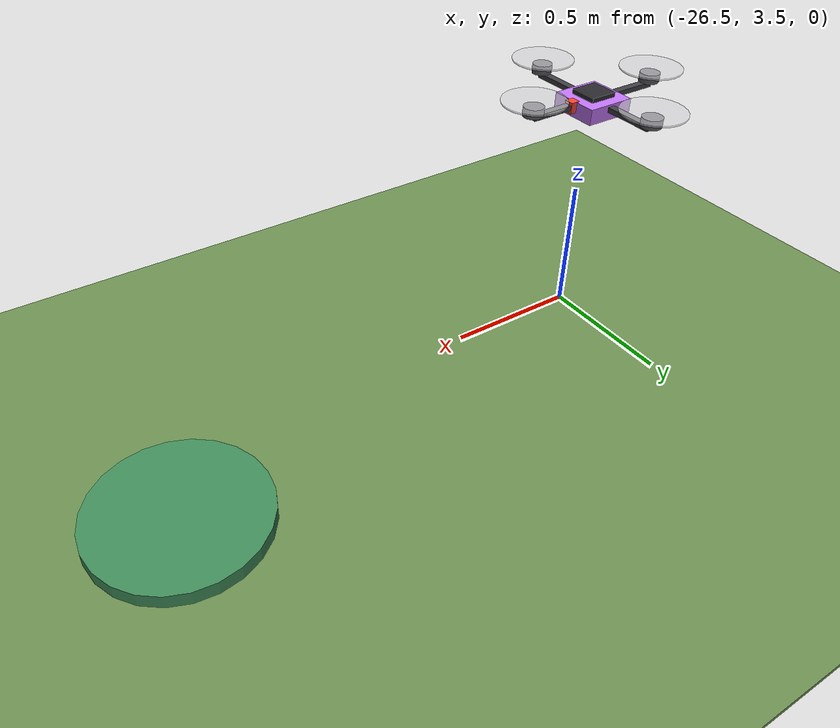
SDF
<sdf version="1.7">
 <world name="zx2026_forest">
  <include><uri>model://sun</uri></include>
  <model name="ground_plane">
   <static>true</static>
   <pose>0.00 0.00 -0.01 0 0 0</pose>
   <link name="link">
    <collision name="col"><geometry><box><size>70.00 70.00 0.02</size></box></geometry></collision>
    <visual name="vis">
     <geometry><box><size>70.00 70.00 0.02</size></box></geometry>
     <material>
      <ambient>0.42 0.56 0.32 1.00</ambient>
      <diffuse>0.42 0.56 0.32 1.00</diffuse>
      <specular>0.2 0.2 0.2 1</specular>
     </material>
    </visual>
   </link>
  </model>
  <model name="pad_5">
   <static>true</static>
   <pose>-24.75 3.75 0.025 0 0 0</pose>
   <link name="pad">
    <collision name="col">
     <geometry><cylinder><radius>0.3</radius><length>0.05</length></cylinder></geometry>
    </collision>
    <visual name="vis">
     <geometry><cylinder><radius>0.3</radius><length>0.05</length></cylinder></geometry>
     <material>
      <ambient>0.25 0.55 0.35 1.00</ambient>
      <diffuse>0.25 0.55 0.35 1.00</diffuse>
      <specular>0.2 0.2 0.2 1</specular>
     </material>
    </visual>
   </link>
  </model>
  <model name="drone_4">
   <pose>-26.25 3.75 1.0 0 0 0</pose>
   <link name="base_link">
    <inertial>
     <mass>2.0</mass>
     <inertia><ixx>0.04833</ixx><iyy>0.04833</iyy><izz>0.08333</izz><ixy>0</ixy><ixz>0</ixz><iyz>0</iyz></inertia>
    </inertial>
    <collision name="col"><geometry><box><size>0.5 0.5 0.2</size></box></geometry></collision>
    <visual name="chassis">
     <geometry><box><size>0.16 0.16 0.05</size></box></geometry>
     <material>
      <ambient>0.75 0.45 0.95 1.00</ambient>
      <diffuse>0.75 0.45 0.95 1.00</diffuse>
      <specular>0.2 0.2 0.2 1</specular>
     </material>
    </visual>
    <visual name="top">
     <pose>0.000 0.000 0.033 0 0 0.000</pose>
     <geometry><box><size>0.09 0.09 0.015</size></box></geometry>
     <material>
      <ambient>0.16 0.16 0.18 1.00</ambient>
      <diffuse>0.16 0.16 0.18 1.00</diffuse>
      <specular>0.2 0.2 0.2 1</specular>
     </material>
    </visual>
    <visual name="nose">
     <pose>0.085 0.000 0.010 0 0 0.000</pose>
     <geometry><box><size>0.03 0.03 0.035</size></box></geometry>
     <material>
      <ambient>0.95 0.25 0.20 1.00</ambient>
      <diffuse>0.95 0.25 0.20 1.00</diffuse>
      <specular>0.2 0.2 0.2 1</specular>
     </material>
    </visual>
    <visual name="arm0">
     <pose>0.120 0.000 0.010 0 0 0.000</pose>
     <geometry><box><size>0.24 0.024 0.016</size></box></geometry>
     <material>
      <ambient>0.24 0.24 0.26 1.00</ambient>
      <diffuse>0.24 0.24 0.26 1.00</diffuse>
      <specular>0.2 0.2 0.2 1</specular>
     </material>
    </visual>
    <visual name="motor0">
     <pose>0.240 0.000 0.032 0 0 0.000</pose>
     <geometry><cylinder><radius>0.032</radius><length>0.03</length></cylinder></geometry>
     <material>
      <ambient>0.33 0.33 0.35 1.00</ambient>
      <diffuse>0.33 0.33 0.35 1.00</diffuse>
      <specular>0.2 0.2 0.2 1</specular>
     </material>
    </visual>
    <visual name="prop0">
     <pose>0.240 0.000 0.062 0 0 0.000</pose>
     <geometry><cylinder><radius>0.10</radius><length>0.006</length></cylinder></geometry>
     <material>
      <ambient>0.82 0.82 0.84 0.55</ambient>
      <diffuse>0.82 0.82 0.84 0.55</diffuse>
      <specular>0.2 0.2 0.2 1</specular>
     </material>
    </visual>
    <visual name="arm1">
     <pose>-0.120 0.000 0.010 0 0 0.000</pose>
     <geometry><box><size>0.24 0.024 0.016</size></box></geometry>
     <material>
      <ambient>0.24 0.24 0.26 1.00</ambient>
      <diffuse>0.24 0.24 0.26 1.00</diffuse>
      <specular>0.2 0.2 0.2 1</specular>
     </material>
    </visual>
    <visual name="motor1">
     <pose>-0.240 0.000 0.032 0 0 0.000</pose>
     <geometry><cylinder><radius>0.032</radius><length>0.03</length></cylinder></geometry>
     <material>
      <ambient>0.33 0.33 0.35 1.00</ambient>
      <diffuse>0.33 0.33 0.35 1.00</diffuse>
      <specular>0.2 0.2 0.2 1</specular>
     </material>
    </visual>
    <visual name="prop1">
     <pose>-0.240 0.000 0.062 0 0 0.000</pose>
     <geometry><cylinder><radius>0.10</radius><length>0.006</length></cylinder></geometry>
     <material>
      <ambient>0.82 0.82 0.84 0.55</ambient>
      <diffuse>0.82 0.82 0.84 0.55</diffuse>
      <specular>0.2 0.2 0.2 1</specular>
     </material>
    </visual>
    <visual name="arm2">
     <pose>0.000 0.120 0.010 0 0 0.000</pose>
     <geometry><box><size>0.024 0.24 0.016</size></box></geometry>
     <material>
      <ambient>0.24 0.24 0.26 1.00</ambient>
      <diffuse>0.24 0.24 0.26 1.00</diffuse>
      <specular>0.2 0.2 0.2 1</specular>
     </material>
    </visual>
    <visual name="motor2">
     <pose>0.000 0.240 0.032 0 0 0.000</pose>
     <geometry><cylinder><radius>0.032</radius><length>0.03</length></cylinder></geometry>
     <material>
      <ambient>0.33 0.33 0.35 1.00</ambient>
      <diffuse>0.33 0.33 0.35 1.00</diffuse>
      <specular>0.2 0.2 0.2 1</specular>
     </material>
    </visual>
    <visual name="prop2">
     <pose>0.000 0.240 0.062 0 0 0.000</pose>
     <geometry><cylinder><radius>0.10</radius><length>0.006</length></cylinder></geometry>
     <material>
      <ambient>0.82 0.82 0.84 0.55</ambient>
      <diffuse>0.82 0.82 0.84 0.55</diffuse>
      <specular>0.2 0.2 0.2 1</specular>
     </material>
    </visual>
    <visual name="arm3">
     <pose>0.000 -0.120 0.010 0 0 0.000</pose>
     <geometry><box><size>0.024 0.24 0.016</size></box></geometry>
     <material>
      <ambient>0.24 0.24 0.26 1.00</ambient>
      <diffuse>0.24 0.24 0.26 1.00</diffuse>
      <specular>0.2 0.2 0.2 1</specular>
     </material>
    </visual>
    <visual name="motor3">
     <pose>0.000 -0.240 0.032 0 0 0.000</pose>
     <geometry><cylinder><radius>0.032</radius><length>0.03</length></cylinder></geometry>
     <material>
      <ambient>0.33 0.33 0.35 1.00</ambient>
      <diffuse>0.33 0.33 0.35 1.00</diffuse>
      <specular>0.2 0.2 0.2 1</specular>
     </material>
    </visual>
    <visual name="prop3">
     <pose>0.000 -0.240 0.062 0 0 0.000</pose>
     <geometry><cylinder><radius>0.10</radius><length>0.006</length></cylinder></geometry>
     <material>
      <ambient>0.82 0.82 0.84 0.55</ambient>
      <diffuse>0.82 0.82 0.84 0.55</diffuse>
      <specular>0.2 0.2 0.2 1</specular>
     </material>
    </visual>
   </link>
   <plugin name="drone_vel_4" filename="libdrone_vel_plugin.so">
    <drone_id>4</drone_id>
    <kp>3.0</kp>
    <g>9.81</g>
   </plugin>
  </model>
 </world>
</sdf>
